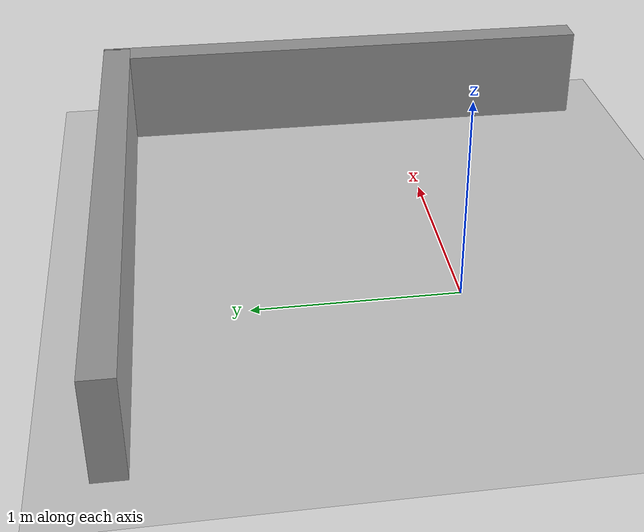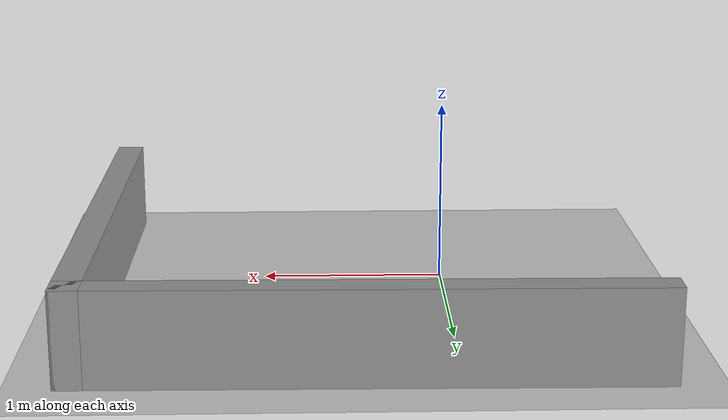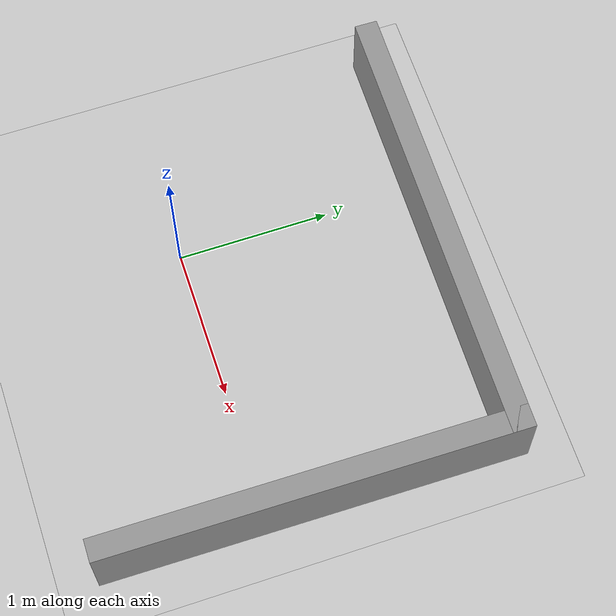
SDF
<sdf version="1.6">
 <world name="default">
  <light name="sun" type="directional">
   <pose>0 0 10 0 -0 0</pose>
   <diffuse>0.8 0.8 0.8 1</diffuse>
   <specular>0.2 0.2 0.2 1</specular>
   <attenuation>
    <range>1000</range>
    <constant>0.9</constant>
    <linear>0.01</linear>
    <quadratic>0.001</quadratic>
   </attenuation>
   <direction>-0.5 0.1 -0.9</direction>
  </light>
  <model name="ground_plane">
   <static>1</static>
   <link name="link">
    <collision name="collision">
     <geometry><plane><normal>0 0 1</normal><size>100 100</size></plane></geometry>
     <surface>
      <contact><collide_bitmask>65535</collide_bitmask></contact>
      <friction><ode><mu>100</mu><mu2>50</mu2></ode></friction>
     </surface>
    </collision>
    <visual name="visual">
     <cast_shadows>0</cast_shadows>
     <geometry><plane><normal>0 0 1</normal><size>100 100</size></plane></geometry>
     <material>
      <script><uri>file://media/materials/scripts/gazebo.material</uri><name>Gazebo/Grey</name></script>
     </material>
    </visual>
   </link>
  </model>
  <gravity>0 0 -9.8</gravity>
  <magnetic_field>6e-06 2.3e-05 -4.2e-05</magnetic_field>
  <atmosphere type="adiabatic"/>
  <physics name="default_physics" default="0" type="ode">
   <max_step_size>0.001</max_step_size>
   <real_time_factor>1</real_time_factor>
   <real_time_update_rate>1000</real_time_update_rate>
  </physics>
  <scene><ambient>0.4 0.4 0.4 1</ambient><background>0.7 0.7 0.7 1</background><shadows>1</shadows></scene>
  <audio><device>default</device></audio>
  <spherical_coordinates>
   <surface_model>EARTH_WGS84</surface_model>
   <latitude_deg>0</latitude_deg>
   <longitude_deg>0</longitude_deg>
   <elevation>0</elevation>
   <heading_deg>0</heading_deg>
  </spherical_coordinates>
  <model name="corner">
   <pose>0.459077 0.306053 0 0 -0 3.12992</pose>
   <link name="Wall_0">
    <collision name="Wall_0_Collision">
     <geometry><box><size>2.75 0.15 0.5</size></box></geometry>
     <pose>0 0 0.25 0 -0 0</pose>
    </collision>
    <visual name="Wall_0_Visual">
     <pose>0 0 0.25 0 -0 0</pose>
     <geometry><box><size>2.75 0.15 0.5</size></box></geometry>
     <material>
      <script><uri>file://media/materials/scripts/gazebo.material</uri><name>Gazebo/Grey</name></script>
      <ambient>1 1 1 1</ambient>
     </material>
     <meta><layer>0</layer></meta>
    </visual>
    <pose>-1.425 0 0 0 -0 -1.5708</pose>
   </link>
   <link name="Wall_1">
    <collision name="Wall_1_Collision">
     <geometry><box><size>3 0.15 0.5</size></box></geometry>
     <pose>0 0 0.25 0 -0 0</pose>
    </collision>
    <visual name="Wall_1_Visual">
     <pose>0 0 0.25 0 -0 0</pose>
     <geometry><box><size>3 0.15 0.5</size></box></geometry>
     <material>
      <script><uri>file://media/materials/scripts/gazebo.material</uri><name>Gazebo/Grey</name></script>
      <ambient>1 1 1 1</ambient>
     </material>
     <meta><layer>0</layer></meta>
    </visual>
    <pose>0 -1.3 0 0 -0 0</pose>
   </link>
   <static>1</static>
  </model>
 </world>
</sdf>
